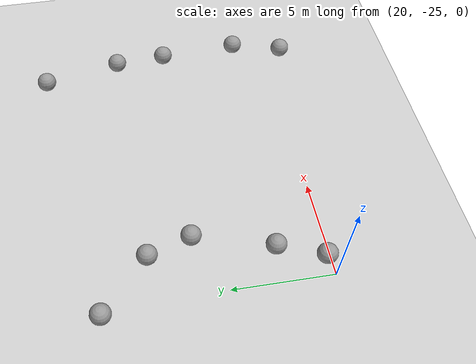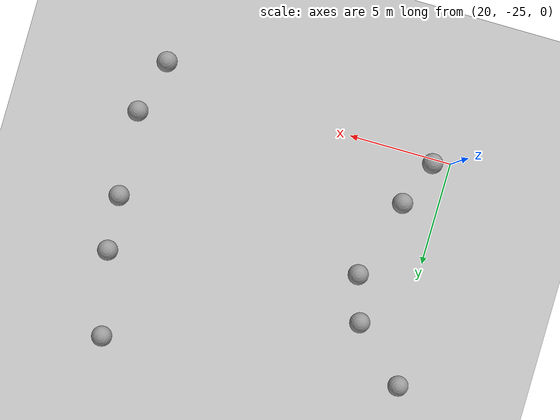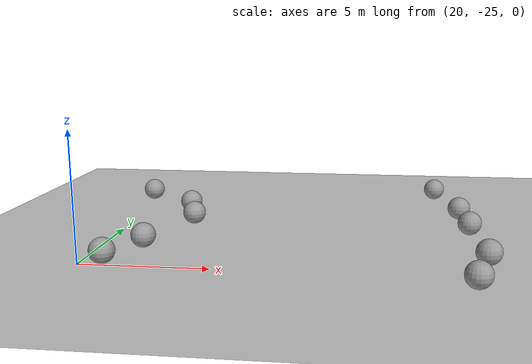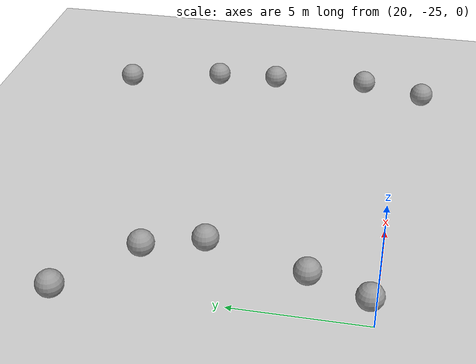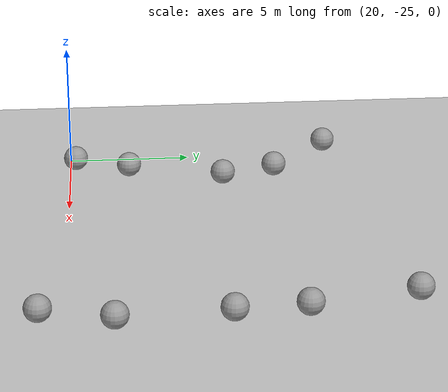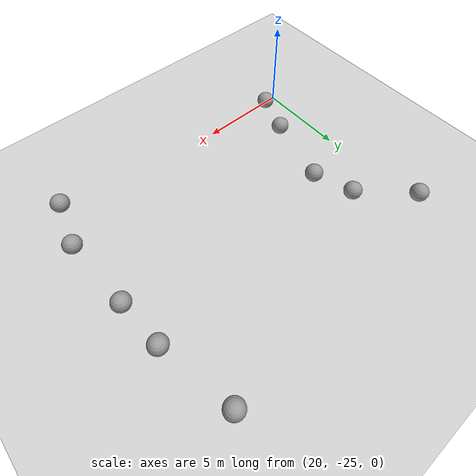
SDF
<sdf version="1.6">
 <world name="default">
  <model name="ground_plane">
   <static>1</static>
   <link name="link">
    <collision name="collision">
     <geometry><plane><normal>0 0 1</normal><size>100 100</size></plane></geometry>
     <surface><friction><ode><mu>100</mu><mu2>50</mu2></ode></friction></surface>
    </collision>
    <visual name="visual">
     <cast_shadows>0</cast_shadows>
     <geometry><plane><normal>0 0 1</normal><size>100 100</size></plane></geometry>
     <material>
      <script><uri>file://media/materials/scripts/gazebo.material</uri><name>Gazebo/Grey</name></script>
     </material>
    </visual>
   </link>
  </model>
  <model name="unit_sphere_0_clone_20">
   <pose>33.8259 -12.4839 0.5 0 -0 0</pose>
   <link name="link">
    <inertial>
     <mass>1</mass>
     <inertia><ixx>0.1</ixx><ixy>0</ixy><ixz>0</ixz><iyy>0.1</iyy><iyz>0</iyz><izz>0.1</izz></inertia>
    </inertial>
    <collision name="collision"><geometry><sphere><radius>0.5</radius></sphere></geometry></collision>
    <visual name="visual">
     <geometry><sphere><radius>0.5</radius></sphere></geometry>
     <material>
      <script><name>Gazebo/Grey</name><uri>file://media/materials/scripts/gazebo.material</uri></script>
     </material>
    </visual>
   </link>
  </model>
  <model name="unit_sphere_0_clone_21">
   <pose>34.8751 -19.1706 0.5 0 -0 0</pose>
   <link name="link">
    <inertial>
     <mass>1</mass>
     <inertia><ixx>0.1</ixx><ixy>0</ixy><ixz>0</ixz><iyy>0.1</iyy><iyz>0</iyz><izz>0.1</izz></inertia>
    </inertial>
    <collision name="collision"><geometry><sphere><radius>0.5</radius></sphere></geometry></collision>
    <visual name="visual">
     <geometry><sphere><radius>0.5</radius></sphere></geometry>
     <material>
      <script><name>Gazebo/Grey</name><uri>file://media/materials/scripts/gazebo.material</uri></script>
     </material>
    </visual>
   </link>
  </model>
  <model name="unit_sphere_0_clone_22">
   <pose>34.4274 -25.9481 0.5 0 -0 0</pose>
   <link name="link">
    <inertial>
     <mass>1</mass>
     <inertia><ixx>0.1</ixx><ixy>0</ixy><ixz>0</ixz><iyy>0.1</iyy><iyz>0</iyz><izz>0.1</izz></inertia>
    </inertial>
    <collision name="collision"><geometry><sphere><radius>0.5</radius></sphere></geometry></collision>
    <visual name="visual">
     <geometry><sphere><radius>0.5</radius></sphere></geometry>
     <material>
      <script><name>Gazebo/Grey</name><uri>file://media/materials/scripts/gazebo.material</uri></script>
     </material>
    </visual>
   </link>
  </model>
  <model name="unit_sphere_0_clone_51">
   <pose>19.5585 -14.0831 0.5 0 -0 0</pose>
   <link name="link">
    <inertial>
     <mass>1</mass>
     <inertia><ixx>0.1</ixx><ixy>0</ixy><ixz>0</ixz><iyy>0.1</iyy><iyz>0</iyz><izz>0.1</izz></inertia>
    </inertial>
    <collision name="collision"><geometry><sphere><radius>0.5</radius></sphere></geometry></collision>
    <visual name="visual">
     <geometry><sphere><radius>0.5</radius></sphere></geometry>
     <material>
      <script><name>Gazebo/Grey</name><uri>file://media/materials/scripts/gazebo.material</uri></script>
     </material>
    </visual>
   </link>
  </model>
  <model name="unit_sphere_0_clone_52">
   <pose>22.8458 -18.6808 0.5 0 -0 0</pose>
   <link name="link">
    <inertial>
     <mass>1</mass>
     <inertia><ixx>0.1</ixx><ixy>0</ixy><ixz>0</ixz><iyy>0.1</iyy><iyz>0</iyz><izz>0.1</izz></inertia>
    </inertial>
    <collision name="collision"><geometry><sphere><radius>0.5</radius></sphere></geometry></collision>
    <visual name="visual">
     <geometry><sphere><radius>0.5</radius></sphere></geometry>
     <material>
      <script><name>Gazebo/Grey</name><uri>file://media/materials/scripts/gazebo.material</uri></script>
     </material>
    </visual>
   </link>
  </model>
  <model name="unit_sphere_0_clone_53">
   <pose>20.887 -24.7614 0.5 0 -0 0</pose>
   <link name="link">
    <inertial>
     <mass>1</mass>
     <inertia><ixx>0.1</ixx><ixy>0</ixy><ixz>0</ixz><iyy>0.1</iyy><iyz>0</iyz><izz>0.1</izz></inertia>
    </inertial>
    <collision name="collision"><geometry><sphere><radius>0.5</radius></sphere></geometry></collision>
    <visual name="visual">
     <geometry><sphere><radius>0.5</radius></sphere></geometry>
     <material>
      <script><name>Gazebo/Grey</name><uri>file://media/materials/scripts/gazebo.material</uri></script>
     </material>
    </visual>
   </link>
  </model>
  <model name="unit_sphere_0_clone_70">
   <pose>22.1416 -16.4882 0.5 0 -0 0</pose>
   <link name="link">
    <inertial>
     <mass>1</mass>
     <inertia><ixx>0.1</ixx><ixy>0</ixy><ixz>0</ixz><iyy>0.1</iyy><iyz>0</iyz><izz>0.1</izz></inertia>
    </inertial>
    <collision name="collision"><geometry><sphere><radius>0.5</radius></sphere></geometry></collision>
    <visual name="visual">
     <geometry><sphere><radius>0.5</radius></sphere></geometry>
     <material>
      <script><name>Gazebo/Grey</name><uri>file://media/materials/scripts/gazebo.material</uri></script>
     </material>
    </visual>
   </link>
  </model>
  <model name="unit_sphere_0_clone_71">
   <pose>21.7439 -22.539 0.5 0 -0 0</pose>
   <link name="link">
    <inertial>
     <mass>1</mass>
     <inertia><ixx>0.1</ixx><ixy>0</ixy><ixz>0</ixz><iyy>0.1</iyy><iyz>0</iyz><izz>0.1</izz></inertia>
    </inertial>
    <collision name="collision"><geometry><sphere><radius>0.5</radius></sphere></geometry></collision>
    <visual name="visual">
     <geometry><sphere><radius>0.5</radius></sphere></geometry>
     <material>
      <script><name>Gazebo/Grey</name><uri>file://media/materials/scripts/gazebo.material</uri></script>
     </material>
    </visual>
   </link>
  </model>
  <model name="unit_sphere_0_clone_118">
   <pose>34.6829 -16.5119 0.5 0 -0 0</pose>
   <link name="link">
    <inertial>
     <mass>1</mass>
     <inertia><ixx>0.1</ixx><ixy>0</ixy><ixz>0</ixz><iyy>0.1</iyy><iyz>0</iyz><izz>0.1</izz></inertia>
    </inertial>
    <collision name="collision"><geometry><sphere><radius>0.5</radius></sphere></geometry></collision>
    <visual name="visual">
     <geometry><sphere><radius>0.5</radius></sphere></geometry>
     <material>
      <script><name>Gazebo/Grey</name><uri>file://media/materials/scripts/gazebo.material</uri></script>
     </material>
    </visual>
   </link>
  </model>
  <model name="unit_sphere_0_clone_119">
   <pose>35.1208 -23.2991 0.5 0 -0 0</pose>
   <link name="link">
    <inertial>
     <mass>1</mass>
     <inertia><ixx>0.1</ixx><ixy>0</ixy><ixz>0</ixz><iyy>0.1</iyy><iyz>0</iyz><izz>0.1</izz></inertia>
    </inertial>
    <collision name="collision"><geometry><sphere><radius>0.5</radius></sphere></geometry></collision>
    <visual name="visual">
     <geometry><sphere><radius>0.5</radius></sphere></geometry>
     <material>
      <script><name>Gazebo/Grey</name><uri>file://media/materials/scripts/gazebo.material</uri></script>
     </material>
    </visual>
   </link>
  </model>
 </world>
</sdf>
